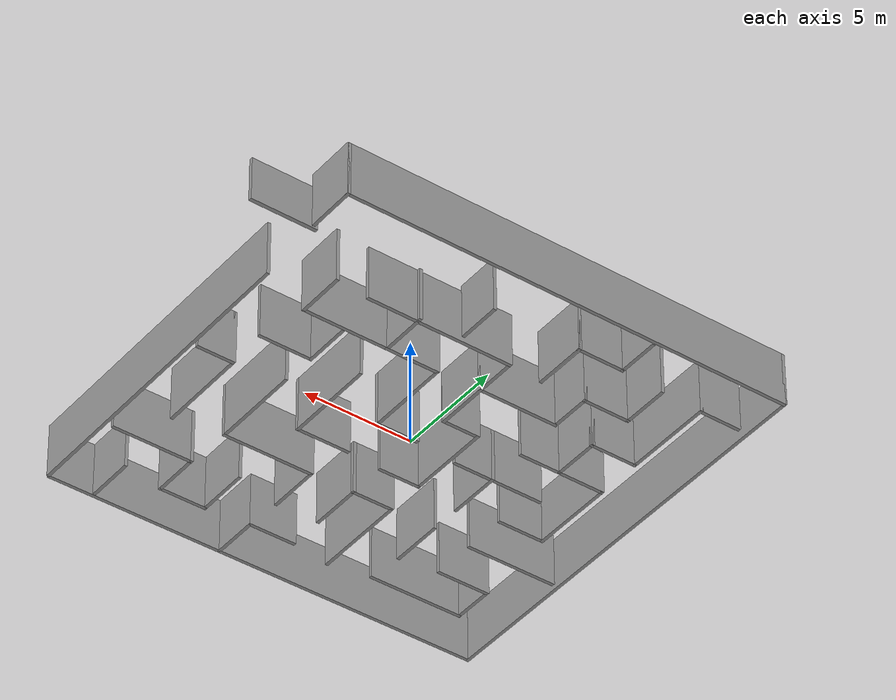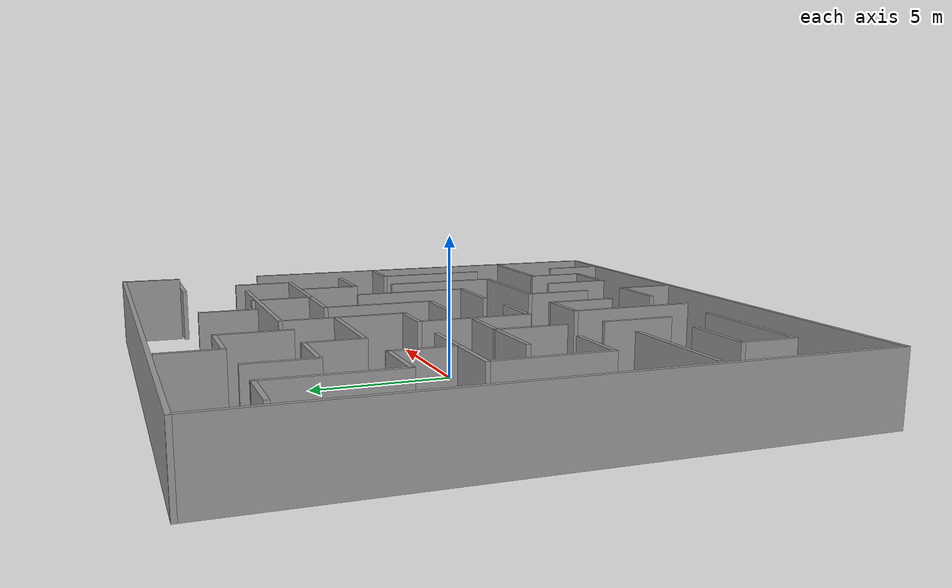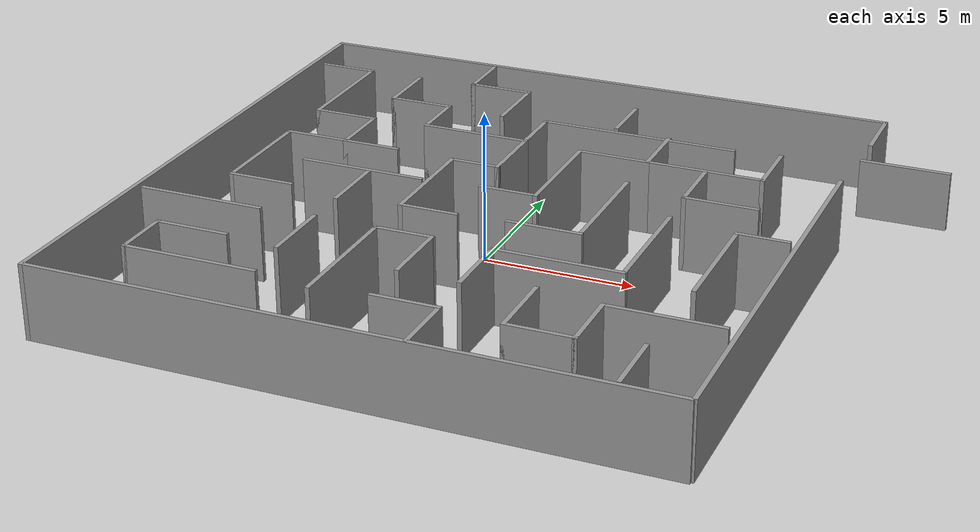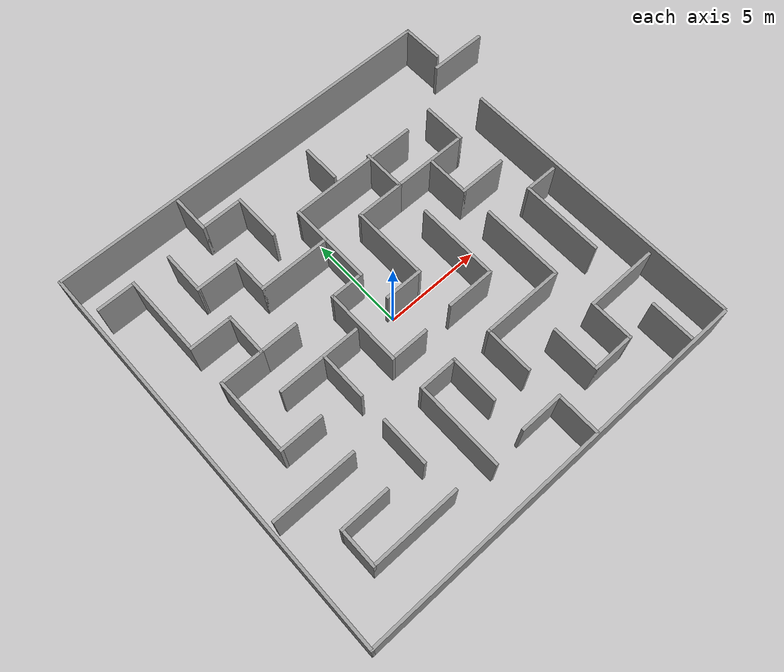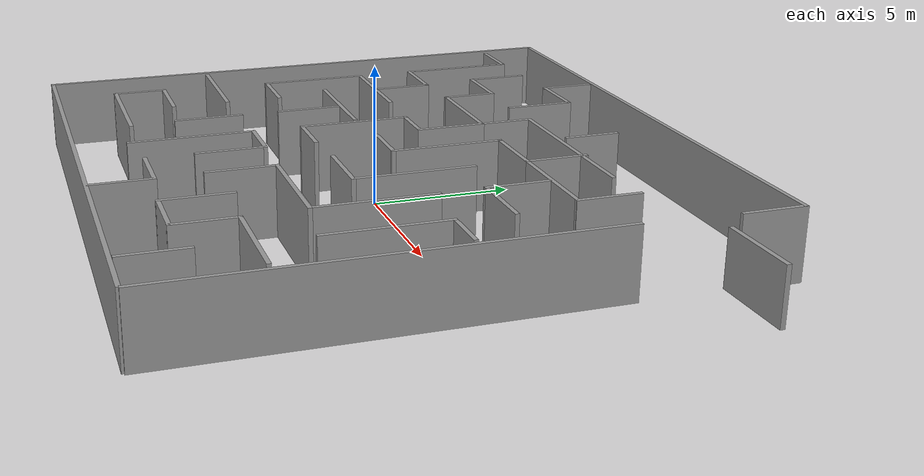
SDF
<?xml version='1.0'?>
<sdf version='1.7'>
  <model name='Untitled'>
    <pose>0.040123 0.094044 0 0 -0 0</pose>
    <link name='Door_1'>
      <collision name='Door_1_Collision'>
        <geometry>
          <box>
            <size>3 0.17 2</size>
          </box>
        </geometry>
        <pose>0 0 1 0 -0 0</pose>
      </collision>
      <visual name='Door_1_Visual'>
        <pose>0 0 1 0 -0 0</pose>
        <geometry>
          <box>
            <size>3 0.17 2</size>
          </box>
        </geometry>
        <material>
          <script>
            <uri>file://media/materials/scripts/gazebo.material</uri>
            <name>Gazebo/Grey</name>
          </script>
        </material>
      </visual>
      <pose>11.5424 7.83694 0 0 -0 0</pose>
    </link>
    <link name='Wall_10'>
      <collision name='Wall_10_Collision'>
        <geometry>
          <box>
            <size>20.5 0.15 2.5</size>
          </box>
        </geometry>
        <pose>0 0 1.25 0 -0 0</pose>
      </collision>
      <visual name='Wall_10_Visual'>
        <pose>0 0 1.25 0 -0 0</pose>
        <geometry>
          <box>
            <size>20.5 0.15 2.5</size>
          </box>
        </geometry>
        <material>
          <script>
            <uri>file://media/materials/scripts/gazebo.material</uri>
            <name>Gazebo/Grey</name>
          </script>
          <ambient>1 1 1 1</ambient>
        </material>
        <meta>
          <layer>0</layer>
        </meta>
      </visual>
      <pose>-0.125 -10.175 0 0 -0 0</pose>
    </link>
    <link name='Wall_12'>
      <collision name='Wall_12_Collision'>
        <geometry>
          <box>
            <size>2.25 0.15 2.5</size>
          </box>
        </geometry>
        <pose>0 0 1.25 0 -0 0</pose>
      </collision>
      <visual name='Wall_12_Visual'>
        <pose>0 0 1.25 0 -0 0</pose>
        <geometry>
          <box>
            <size>2.25 0.15 2.5</size>
          </box>
        </geometry>
        <material>
          <script>
            <uri>file://media/materials/scripts/gazebo.material</uri>
            <name>Gazebo/Grey</name>
          </script>
          <ambient>1 1 1 1</ambient>
        </material>
        <meta>
          <layer>0</layer>
        </meta>
      </visual>
      <pose>10.3 9.125 0 0 -0 -1.5708</pose>
    </link>
    <link name='Wall_14'>
      <collision name='Wall_14_Collision'>
        <geometry>
          <box>
            <size>15 0.15 2.5</size>
          </box>
        </geometry>
        <pose>0 0 1.25 0 -0 0</pose>
      </collision>
      <visual name='Wall_14_Visual'>
        <pose>0 0 1.25 0 -0 0</pose>
        <geometry>
          <box>
            <size>15 0.15 2.5</size>
          </box>
        </geometry>
        <material>
          <script>
            <uri>file://media/materials/scripts/gazebo.material</uri>
            <name>Gazebo/Grey</name>
          </script>
          <ambient>1 1 1 1</ambient>
        </material>
        <meta>
          <layer>0</layer>
        </meta>
      </visual>
      <pose>10.1273 -2.66445 0 0 -0 -1.5708</pose>
    </link>
    <link name='Wall_16'>
      <collision name='Wall_16_Collision'>
        <geometry>
          <box>
            <size>2 0.15 2.5</size>
          </box>
        </geometry>
        <pose>0 0 1.25 0 -0 0</pose>
      </collision>
      <visual name='Wall_16_Visual'>
        <pose>0 0 1.25 0 -0 0</pose>
        <geometry>
          <box>
            <size>2 0.15 2.5</size>
          </box>
        </geometry>
        <material>
          <script>
            <uri>file://media/materials/scripts/gazebo.material</uri>
            <name>Gazebo/Grey</name>
          </script>
          <ambient>1 1 1 1</ambient>
        </material>
        <meta>
          <layer>0</layer>
        </meta>
      </visual>
      <pose>-8.88278 7.96 0 0 -0 0</pose>
    </link>
    <link name='Wall_17'>
      <collision name='Wall_17_Collision'>
        <geometry>
          <box>
            <size>4.25 0.15 2.5</size>
          </box>
        </geometry>
        <pose>0 0 1.25 0 -0 0</pose>
      </collision>
      <visual name='Wall_17_Visual'>
        <pose>0 0 1.25 0 -0 0</pose>
        <geometry>
          <box>
            <size>4.25 0.15 2.5</size>
          </box>
        </geometry>
        <material>
          <script>
            <uri>file://media/materials/scripts/gazebo.material</uri>
            <name>Gazebo/Grey</name>
          </script>
          <ambient>1 1 1 1</ambient>
        </material>
        <meta>
          <layer>0</layer>
        </meta>
      </visual>
      <pose>-7.95778 5.91 0 0 -0 -1.5708</pose>
    </link>
    <link name='Wall_18'>
      <collision name='Wall_18_Collision'>
        <geometry>
          <box>
            <size>2.25 0.15 2.5</size>
          </box>
        </geometry>
        <pose>0 0 1.25 0 -0 0</pose>
      </collision>
      <visual name='Wall_18_Visual'>
        <pose>0 0 1.25 0 -0 0</pose>
        <geometry>
          <box>
            <size>2.25 0.15 2.5</size>
          </box>
        </geometry>
        <material>
          <script>
            <uri>file://media/materials/scripts/gazebo.material</uri>
            <name>Gazebo/Grey</name>
          </script>
          <ambient>1 1 1 1</ambient>
        </material>
        <meta>
          <layer>0</layer>
        </meta>
      </visual>
      <pose>-6.90778 3.86 0 0 -0 0</pose>
    </link>
    <link name='Wall_21'>
      <collision name='Wall_21_Collision'>
        <geometry>
          <box>
            <size>2.25 0.15 2.5</size>
          </box>
        </geometry>
        <pose>0 0 1.25 0 -0 0</pose>
      </collision>
      <visual name='Wall_21_Visual'>
        <pose>0 0 1.25 0 -0 0</pose>
        <geometry>
          <box>
            <size>2.25 0.15 2.5</size>
          </box>
        </geometry>
        <material>
          <script>
            <uri>file://media/materials/scripts/gazebo.material</uri>
            <name>Gazebo/Grey</name>
          </script>
          <ambient>1 1 1 1</ambient>
        </material>
        <meta>
          <layer>0</layer>
        </meta>
      </visual>
      <pose>-5.85778 2.81 0 0 -0 -1.5708</pose>
    </link>
    <link name='Wall_22'>
      <collision name='Wall_22_Collision'>
        <geometry>
          <box>
            <size>2 0.15 2.5</size>
          </box>
        </geometry>
        <pose>0 0 1.25 0 -0 0</pose>
      </collision>
      <visual name='Wall_22_Visual'>
        <pose>0 0 1.25 0 -0 0</pose>
        <geometry>
          <box>
            <size>2 0.15 2.5</size>
          </box>
        </geometry>
        <material>
          <script>
            <uri>file://media/materials/scripts/gazebo.material</uri>
            <name>Gazebo/Grey</name>
          </script>
          <ambient>1 1 1 1</ambient>
        </material>
        <meta>
          <layer>0</layer>
        </meta>
      </visual>
      <pose>-4.93278 1.76 0 0 -0 0</pose>
    </link>
    <link name='Wall_24'>
      <collision name='Wall_24_Collision'>
        <geometry>
          <box>
            <size>2.25 0.15 2.5</size>
          </box>
        </geometry>
        <pose>0 0 1.25 0 -0 0</pose>
      </collision>
      <visual name='Wall_24_Visual'>
        <pose>0 0 1.25 0 -0 0</pose>
        <geometry>
          <box>
            <size>2.25 0.15 2.5</size>
          </box>
        </geometry>
        <material>
          <script>
            <uri>file://media/materials/scripts/gazebo.material</uri>
            <name>Gazebo/Grey</name>
          </script>
          <ambient>1 1 1 1</ambient>
        </material>
        <meta>
          <layer>0</layer>
        </meta>
      </visual>
      <pose>-6.90778 1.76 0 0 -0 3.14159</pose>
    </link>
    <link name='Wall_25'>
      <collision name='Wall_25_Collision'>
        <geometry>
          <box>
            <size>4 0.15 2.5</size>
          </box>
        </geometry>
        <pose>0 0 1.25 0 -0 0</pose>
      </collision>
      <visual name='Wall_25_Visual'>
        <pose>0 0 1.25 0 -0 0</pose>
        <geometry>
          <box>
            <size>4 0.15 2.5</size>
          </box>
        </geometry>
        <material>
          <script>
            <uri>file://media/materials/scripts/gazebo.material</uri>
            <name>Gazebo/Grey</name>
          </script>
          <ambient>1 1 1 1</ambient>
        </material>
        <meta>
          <layer>0</layer>
        </meta>
      </visual>
      <pose>-7.95778 -0.165003 0 0 -0 -1.5708</pose>
    </link>
    <link name='Wall_26'>
      <collision name='Wall_26_Collision'>
        <geometry>
          <box>
            <size>2.25 0.15 2.5</size>
          </box>
        </geometry>
        <pose>0 0 1.25 0 -0 0</pose>
      </collision>
      <visual name='Wall_26_Visual'>
        <pose>0 0 1.25 0 -0 0</pose>
        <geometry>
          <box>
            <size>2.25 0.15 2.5</size>
          </box>
        </geometry>
        <material>
          <script>
            <uri>file://media/materials/scripts/gazebo.material</uri>
            <name>Gazebo/Grey</name>
          </script>
          <ambient>1 1 1 1</ambient>
        </material>
        <meta>
          <layer>0</layer>
        </meta>
      </visual>
      <pose>-6.90778 -2.09 0 0 -0 0</pose>
    </link>
    <link name='Wall_28'>
      <collision name='Wall_28_Collision'>
        <geometry>
          <box>
            <size>2.25 0.15 2.5</size>
          </box>
        </geometry>
        <pose>0 0 1.25 0 -0 0</pose>
      </collision>
      <visual name='Wall_28_Visual'>
        <pose>0 0 1.25 0 -0 0</pose>
        <geometry>
          <box>
            <size>2.25 0.15 2.5</size>
          </box>
        </geometry>
        <material>
          <script>
            <uri>file://media/materials/scripts/gazebo.material</uri>
            <name>Gazebo/Grey</name>
          </script>
          <ambient>1 1 1 1</ambient>
        </material>
        <meta>
          <layer>0</layer>
        </meta>
      </visual>
      <pose>-6.05458 6.91 0 0 -0 -1.5708</pose>
    </link>
    <link name='Wall_29'>
      <collision name='Wall_29_Collision'>
        <geometry>
          <box>
            <size>2.25 0.15 2.5</size>
          </box>
        </geometry>
        <pose>0 0 1.25 0 -0 0</pose>
      </collision>
      <visual name='Wall_29_Visual'>
        <pose>0 0 1.25 0 -0 0</pose>
        <geometry>
          <box>
            <size>2.25 0.15 2.5</size>
          </box>
        </geometry>
        <material>
          <script>
            <uri>file://media/materials/scripts/gazebo.material</uri>
            <name>Gazebo/Grey</name>
          </script>
          <ambient>1 1 1 1</ambient>
        </material>
        <meta>
          <layer>0</layer>
        </meta>
      </visual>
      <pose>-5.00458 5.86 0 0 -0 0</pose>
    </link>
    <link name='Wall_30'>
      <collision name='Wall_30_Collision'>
        <geometry>
          <box>
            <size>2 0.15 2.5</size>
          </box>
        </geometry>
        <pose>0 0 1.25 0 -0 0</pose>
      </collision>
      <visual name='Wall_30_Visual'>
        <pose>0 0 1.25 0 -0 0</pose>
        <geometry>
          <box>
            <size>2 0.15 2.5</size>
          </box>
        </geometry>
        <material>
          <script>
            <uri>file://media/materials/scripts/gazebo.material</uri>
            <name>Gazebo/Grey</name>
          </script>
          <ambient>1 1 1 1</ambient>
        </material>
        <meta>
          <layer>0</layer>
        </meta>
      </visual>
      <pose>-3.95458 4.935 0 0 -0 -1.5708</pose>
    </link>
    <link name='Wall_31'>
      <collision name='Wall_31_Collision'>
        <geometry>
          <box>
            <size>3.75 0.15 2.5</size>
          </box>
        </geometry>
        <pose>0 0 1.25 0 -0 0</pose>
      </collision>
      <visual name='Wall_31_Visual'>
        <pose>0 0 1.25 0 -0 0</pose>
        <geometry>
          <box>
            <size>3.75 0.15 2.5</size>
          </box>
        </geometry>
        <material>
          <script>
            <uri>file://media/materials/scripts/gazebo.material</uri>
            <name>Gazebo/Grey</name>
          </script>
          <ambient>1 1 1 1</ambient>
        </material>
        <meta>
          <layer>0</layer>
        </meta>
      </visual>
      <pose>-2.15458 4.01 0 0 -0 0</pose>
    </link>
    <link name='Wall_32'>
      <collision name='Wall_32_Collision'>
        <geometry>
          <box>
            <size>2 0.15 2.5</size>
          </box>
        </geometry>
        <pose>0 0 1.25 0 -0 0</pose>
      </collision>
      <visual name='Wall_32_Visual'>
        <pose>0 0 1.25 0 -0 0</pose>
        <geometry>
          <box>
            <size>2 0.15 2.5</size>
          </box>
        </geometry>
        <material>
          <script>
            <uri>file://media/materials/scripts/gazebo.material</uri>
            <name>Gazebo/Grey</name>
          </script>
          <ambient>1 1 1 1</ambient>
        </material>
        <meta>
          <layer>0</layer>
        </meta>
      </visual>
      <pose>-0.354576 4.935 0 0 -0 1.5708</pose>
    </link>
    <link name='Wall_33'>
      <collision name='Wall_33_Collision'>
        <geometry>
          <box>
            <size>6.75 0.15 2.5</size>
          </box>
        </geometry>
        <pose>0 0 1.25 0 -0 0</pose>
      </collision>
      <visual name='Wall_33_Visual'>
        <pose>0 0 1.25 0 -0 0</pose>
        <geometry>
          <box>
            <size>6.75 0.15 2.5</size>
          </box>
        </geometry>
        <material>
          <script>
            <uri>file://media/materials/scripts/gazebo.material</uri>
            <name>Gazebo/Grey</name>
          </script>
          <ambient>1 1 1 1</ambient>
        </material>
        <meta>
          <layer>0</layer>
        </meta>
      </visual>
      <pose>2.94542 5.86 0 0 -0 0</pose>
    </link>
    <link name='Wall_35'>
      <collision name='Wall_35_Collision'>
        <geometry>
          <box>
            <size>2 0.15 2.5</size>
          </box>
        </geometry>
        <pose>0 0 1.25 0 -0 0</pose>
      </collision>
      <visual name='Wall_35_Visual'>
        <pose>0 0 1.25 0 -0 0</pose>
        <geometry>
          <box>
            <size>2 0.15 2.5</size>
          </box>
        </geometry>
        <material>
          <script>
            <uri>file://media/materials/scripts/gazebo.material</uri>
            <name>Gazebo/Grey</name>
          </script>
          <ambient>1 1 1 1</ambient>
        </material>
        <meta>
          <layer>0</layer>
        </meta>
      </visual>
      <pose>2.0671 7.16222 0 0 -0 1.5708</pose>
    </link>
    <link name='Wall_37'>
      <collision name='Wall_37_Collision'>
        <geometry>
          <box>
            <size>2 0.15 2.5</size>
          </box>
        </geometry>
        <pose>0 0 1.25 0 -0 0</pose>
      </collision>
      <visual name='Wall_37_Visual'>
        <pose>0 0 1.25 0 -0 0</pose>
        <geometry>
          <box>
            <size>2 0.15 2.5</size>
          </box>
        </geometry>
        <material>
          <script>
            <uri>file://media/materials/scripts/gazebo.material</uri>
            <name>Gazebo/Grey</name>
          </script>
          <ambient>1 1 1 1</ambient>
        </material>
        <meta>
          <layer>0</layer>
        </meta>
      </visual>
      <pose>-4.02416 9.06542 0 0 -0 -1.5708</pose>
    </link>
    <link name='Wall_38'>
      <collision name='Wall_38_Collision'>
        <geometry>
          <box>
            <size>2.25 0.15 2.5</size>
          </box>
        </geometry>
        <pose>0 0 1.25 0 -0 0</pose>
      </collision>
      <visual name='Wall_38_Visual'>
        <pose>0 0 1.25 0 -0 0</pose>
        <geometry>
          <box>
            <size>2.25 0.15 2.5</size>
          </box>
        </geometry>
        <material>
          <script>
            <uri>file://media/materials/scripts/gazebo.material</uri>
            <name>Gazebo/Grey</name>
          </script>
          <ambient>1 1 1 1</ambient>
        </material>
        <meta>
          <layer>0</layer>
        </meta>
      </visual>
      <pose>-2.97416 8.14042 0 0 -0 0</pose>
    </link>
    <link name='Wall_41'>
      <collision name='Wall_41_Collision'>
        <geometry>
          <box>
            <size>2.5 0.15 2.5</size>
          </box>
        </geometry>
        <pose>0 0 1.25 0 -0 0</pose>
      </collision>
      <visual name='Wall_41_Visual'>
        <pose>0 0 1.25 0 -0 0</pose>
        <geometry>
          <box>
            <size>2.5 0.15 2.5</size>
          </box>
        </geometry>
        <material>
          <script>
            <uri>file://media/materials/scripts/gazebo.material</uri>
            <name>Gazebo/Grey</name>
          </script>
          <ambient>1 1 1 1</ambient>
        </material>
        <meta>
          <layer>0</layer>
        </meta>
      </visual>
      <pose>-1.92416 6.96542 0 0 -0 -1.5708</pose>
    </link>
    <link name='Wall_43'>
      <collision name='Wall_43_Collision'>
        <geometry>
          <box>
            <size>2.25 0.15 2.5</size>
          </box>
        </geometry>
        <pose>0 0 1.25 0 -0 0</pose>
      </collision>
      <visual name='Wall_43_Visual'>
        <pose>0 0 1.25 0 -0 0</pose>
        <geometry>
          <box>
            <size>2.25 0.15 2.5</size>
          </box>
        </geometry>
        <material>
          <script>
            <uri>file://media/materials/scripts/gazebo.material</uri>
            <name>Gazebo/Grey</name>
          </script>
          <ambient>1 1 1 1</ambient>
        </material>
        <meta>
          <layer>0</layer>
        </meta>
      </visual>
      <pose>3.97447 4.9411 0 0 -0 -1.5708</pose>
    </link>
    <link name='Wall_44'>
      <collision name='Wall_44_Collision'>
        <geometry>
          <box>
            <size>2.5 0.15 2.5</size>
          </box>
        </geometry>
        <pose>0 0 1.25 0 -0 0</pose>
      </collision>
      <visual name='Wall_44_Visual'>
        <pose>0 0 1.25 0 -0 0</pose>
        <geometry>
          <box>
            <size>2.5 0.15 2.5</size>
          </box>
        </geometry>
        <material>
          <script>
            <uri>file://media/materials/scripts/gazebo.material</uri>
            <name>Gazebo/Grey</name>
          </script>
          <ambient>1 1 1 1</ambient>
        </material>
        <meta>
          <layer>0</layer>
        </meta>
      </visual>
      <pose>2.79947 3.8911 0 0 -0 3.14159</pose>
    </link>
    <link name='Wall_45'>
      <collision name='Wall_45_Collision'>
        <geometry>
          <box>
            <size>4 0.15 2.5</size>
          </box>
        </geometry>
        <pose>0 0 1.25 0 -0 0</pose>
      </collision>
      <visual name='Wall_45_Visual'>
        <pose>0 0 1.25 0 -0 0</pose>
        <geometry>
          <box>
            <size>4 0.15 2.5</size>
          </box>
        </geometry>
        <material>
          <script>
            <uri>file://media/materials/scripts/gazebo.material</uri>
            <name>Gazebo/Grey</name>
          </script>
          <ambient>1 1 1 1</ambient>
        </material>
        <meta>
          <layer>0</layer>
        </meta>
      </visual>
      <pose>1.62447 1.9661 0 0 -0 -1.5708</pose>
    </link>
    <link name='Wall_46'>
      <collision name='Wall_46_Collision'>
        <geometry>
          <box>
            <size>2 0.15 2.5</size>
          </box>
        </geometry>
        <pose>0 0 1.25 0 -0 0</pose>
      </collision>
      <visual name='Wall_46_Visual'>
        <pose>0 0 1.25 0 -0 0</pose>
        <geometry>
          <box>
            <size>2 0.15 2.5</size>
          </box>
        </geometry>
        <material>
          <script>
            <uri>file://media/materials/scripts/gazebo.material</uri>
            <name>Gazebo/Grey</name>
          </script>
          <ambient>1 1 1 1</ambient>
        </material>
        <meta>
          <layer>0</layer>
        </meta>
      </visual>
      <pose>0.699468 0.041105 0 0 -0 3.14159</pose>
    </link>
    <link name='Wall_48'>
      <collision name='Wall_48_Collision'>
        <geometry>
          <box>
            <size>4 0.15 2.5</size>
          </box>
        </geometry>
        <pose>0 0 1.25 0 -0 0</pose>
      </collision>
      <visual name='Wall_48_Visual'>
        <pose>0 0 1.25 0 -0 0</pose>
        <geometry>
          <box>
            <size>4 0.15 2.5</size>
          </box>
        </geometry>
        <material>
          <script>
            <uri>file://media/materials/scripts/gazebo.material</uri>
            <name>Gazebo/Grey</name>
          </script>
          <ambient>1 1 1 1</ambient>
        </material>
        <meta>
          <layer>0</layer>
        </meta>
      </visual>
      <pose>5.89947 3.8911 0 0 -0 0</pose>
    </link>
    <link name='Wall_49'>
      <collision name='Wall_49_Collision'>
        <geometry>
          <box>
            <size>2.25 0.15 2.5</size>
          </box>
        </geometry>
        <pose>0 0 1.25 0 -0 0</pose>
      </collision>
      <visual name='Wall_49_Visual'>
        <pose>0 0 1.25 0 -0 0</pose>
        <geometry>
          <box>
            <size>2.25 0.15 2.5</size>
          </box>
        </geometry>
        <material>
          <script>
            <uri>file://media/materials/scripts/gazebo.material</uri>
            <name>Gazebo/Grey</name>
          </script>
          <ambient>1 1 1 1</ambient>
        </material>
        <meta>
          <layer>0</layer>
        </meta>
      </visual>
      <pose>7.82447 4.9411 0 0 -0 1.5708</pose>
    </link>
    <link name='Wall_52'>
      <collision name='Wall_52_Collision'>
        <geometry>
          <box>
            <size>2.25 0.15 2.5</size>
          </box>
        </geometry>
        <pose>0 0 1.25 0 -0 0</pose>
      </collision>
      <visual name='Wall_52_Visual'>
        <pose>0 0 1.25 0 -0 0</pose>
        <geometry>
          <box>
            <size>2.25 0.15 2.5</size>
          </box>
        </geometry>
        <material>
          <script>
            <uri>file://media/materials/scripts/gazebo.material</uri>
            <name>Gazebo/Grey</name>
          </script>
          <ambient>1 1 1 1</ambient>
        </material>
        <meta>
          <layer>0</layer>
        </meta>
      </visual>
      <pose>5.94336 2.7261 0 0 -0 -1.5708</pose>
    </link>
    <link name='Wall_53'>
      <collision name='Wall_53_Collision'>
        <geometry>
          <box>
            <size>2.5 0.15 2.5</size>
          </box>
        </geometry>
        <pose>0 0 1.25 0 -0 0</pose>
      </collision>
      <visual name='Wall_53_Visual'>
        <pose>0 0 1.25 0 -0 0</pose>
        <geometry>
          <box>
            <size>2.5 0.15 2.5</size>
          </box>
        </geometry>
        <material>
          <script>
            <uri>file://media/materials/scripts/gazebo.material</uri>
            <name>Gazebo/Grey</name>
          </script>
          <ambient>1 1 1 1</ambient>
        </material>
        <meta>
          <layer>0</layer>
        </meta>
      </visual>
      <pose>7.11836 1.6761 0 0 -0 0</pose>
    </link>
    <link name='Wall_56'>
      <collision name='Wall_56_Collision'>
        <geometry>
          <box>
            <size>2.5 0.15 2.5</size>
          </box>
        </geometry>
        <pose>0 0 1.25 0 -0 0</pose>
      </collision>
      <visual name='Wall_56_Visual'>
        <pose>0 0 1.25 0 -0 0</pose>
        <geometry>
          <box>
            <size>2.5 0.15 2.5</size>
          </box>
        </geometry>
        <material>
          <script>
            <uri>file://media/materials/scripts/gazebo.material</uri>
            <name>Gazebo/Grey</name>
          </script>
          <ambient>1 1 1 1</ambient>
        </material>
        <meta>
          <layer>0</layer>
        </meta>
      </visual>
      <pose>-0.354576 2.835 0 0 -0 -1.5708</pose>
    </link>
    <link name='Wall_57'>
      <collision name='Wall_57_Collision'>
        <geometry>
          <box>
            <size>1.75 0.15 2.5</size>
          </box>
        </geometry>
        <pose>0 0 1.25 0 -0 0</pose>
      </collision>
      <visual name='Wall_57_Visual'>
        <pose>0 0 1.25 0 -0 0</pose>
        <geometry>
          <box>
            <size>1.75 0.15 2.5</size>
          </box>
        </geometry>
        <material>
          <script>
            <uri>file://media/materials/scripts/gazebo.material</uri>
            <name>Gazebo/Grey</name>
          </script>
          <ambient>1 1 1 1</ambient>
        </material>
        <meta>
          <layer>0</layer>
        </meta>
      </visual>
      <pose>-1.15458 1.66 0 0 -0 3.14159</pose>
    </link>
    <link name='Wall_58'>
      <collision name='Wall_58_Collision'>
        <geometry>
          <box>
            <size>4 0.15 2.5</size>
          </box>
        </geometry>
        <pose>0 0 1.25 0 -0 0</pose>
      </collision>
      <visual name='Wall_58_Visual'>
        <pose>0 0 1.25 0 -0 0</pose>
        <geometry>
          <box>
            <size>4 0.15 2.5</size>
          </box>
        </geometry>
        <material>
          <script>
            <uri>file://media/materials/scripts/gazebo.material</uri>
            <name>Gazebo/Grey</name>
          </script>
          <ambient>1 1 1 1</ambient>
        </material>
        <meta>
          <layer>0</layer>
        </meta>
      </visual>
      <pose>-1.95458 -0.265003 0 0 -0 -1.5708</pose>
    </link>
    <link name='Wall_59'>
      <collision name='Wall_59_Collision'>
        <geometry>
          <box>
            <size>2 0.15 2.5</size>
          </box>
        </geometry>
        <pose>0 0 1.25 0 -0 0</pose>
      </collision>
      <visual name='Wall_59_Visual'>
        <pose>0 0 1.25 0 -0 0</pose>
        <geometry>
          <box>
            <size>2 0.15 2.5</size>
          </box>
        </geometry>
        <material>
          <script>
            <uri>file://media/materials/scripts/gazebo.material</uri>
            <name>Gazebo/Grey</name>
          </script>
          <ambient>1 1 1 1</ambient>
        </material>
        <meta>
          <layer>0</layer>
        </meta>
      </visual>
      <pose>-1.02958 -2.19 0 0 -0 0</pose>
    </link>
    <link name='Wall_61'>
      <collision name='Wall_61_Collision'>
        <geometry>
          <box>
            <size>4.25 0.15 2.5</size>
          </box>
        </geometry>
        <pose>0 0 1.25 0 -0 0</pose>
      </collision>
      <visual name='Wall_61_Visual'>
        <pose>0 0 1.25 0 -0 0</pose>
        <geometry>
          <box>
            <size>4.25 0.15 2.5</size>
          </box>
        </geometry>
        <material>
          <script>
            <uri>file://media/materials/scripts/gazebo.material</uri>
            <name>Gazebo/Grey</name>
          </script>
          <ambient>1 1 1 1</ambient>
        </material>
        <meta>
          <layer>0</layer>
        </meta>
      </visual>
      <pose>-4.28985 -0.161683 0 0 -0 3.14159</pose>
    </link>
    <link name='Wall_63'>
      <collision name='Wall_63_Collision'>
        <geometry>
          <box>
            <size>2.5 0.15 2.5</size>
          </box>
        </geometry>
        <pose>0 0 1.25 0 -0 0</pose>
      </collision>
      <visual name='Wall_63_Visual'>
        <pose>0 0 1.25 0 -0 0</pose>
        <geometry>
          <box>
            <size>2.5 0.15 2.5</size>
          </box>
        </geometry>
        <material>
          <script>
            <uri>file://media/materials/scripts/gazebo.material</uri>
            <name>Gazebo/Grey</name>
          </script>
          <ambient>1 1 1 1</ambient>
        </material>
        <meta>
          <layer>0</layer>
        </meta>
      </visual>
      <pose>-4.02416 -1.33668 0 0 -0 -1.5708</pose>
    </link>
    <link name='Wall_65'>
      <collision name='Wall_65_Collision'>
        <geometry>
          <box>
            <size>4.25 0.15 2.5</size>
          </box>
        </geometry>
        <pose>0 0 1.25 0 -0 0</pose>
      </collision>
      <visual name='Wall_65_Visual'>
        <pose>0 0 1.25 0 -0 0</pose>
        <geometry>
          <box>
            <size>4.25 0.15 2.5</size>
          </box>
        </geometry>
        <material>
          <script>
            <uri>file://media/materials/scripts/gazebo.material</uri>
            <name>Gazebo/Grey</name>
          </script>
          <ambient>1 1 1 1</ambient>
        </material>
        <meta>
          <layer>0</layer>
        </meta>
      </visual>
      <pose>3.91294 0.00332 0 0 -0 -1.5708</pose>
    </link>
    <link name='Wall_66'>
      <collision name='Wall_66_Collision'>
        <geometry>
          <box>
            <size>2.5 0.15 2.5</size>
          </box>
        </geometry>
        <pose>0 0 1.25 0 -0 0</pose>
      </collision>
      <visual name='Wall_66_Visual'>
        <pose>0 0 1.25 0 -0 0</pose>
        <geometry>
          <box>
            <size>2.5 0.15 2.5</size>
          </box>
        </geometry>
        <material>
          <script>
            <uri>file://media/materials/scripts/gazebo.material</uri>
            <name>Gazebo/Grey</name>
          </script>
          <ambient>1 1 1 1</ambient>
        </material>
        <meta>
          <layer>0</layer>
        </meta>
      </visual>
      <pose>2.73794 -2.04668 0 0 -0 3.14159</pose>
    </link>
    <link name='Wall_68'>
      <collision name='Wall_68_Collision'>
        <geometry>
          <box>
            <size>4.25 0.15 2.5</size>
          </box>
        </geometry>
        <pose>0 0 1.25 0 -0 0</pose>
      </collision>
      <visual name='Wall_68_Visual'>
        <pose>0 0 1.25 0 -0 0</pose>
        <geometry>
          <box>
            <size>4.25 0.15 2.5</size>
          </box>
        </geometry>
        <material>
          <script>
            <uri>file://media/materials/scripts/gazebo.material</uri>
            <name>Gazebo/Grey</name>
          </script>
          <ambient>1 1 1 1</ambient>
        </material>
        <meta>
          <layer>0</layer>
        </meta>
      </visual>
      <pose>6.00489 -1.96557 0 0 -0 -1.5708</pose>
    </link>
    <link name='Wall_69'>
      <collision name='Wall_69_Collision'>
        <geometry>
          <box>
            <size>4.25 0.15 2.5</size>
          </box>
        </geometry>
        <pose>0 0 1.25 0 -0 0</pose>
      </collision>
      <visual name='Wall_69_Visual'>
        <pose>0 0 1.25 0 -0 0</pose>
        <geometry>
          <box>
            <size>4.25 0.15 2.5</size>
          </box>
        </geometry>
        <material>
          <script>
            <uri>file://media/materials/scripts/gazebo.material</uri>
            <name>Gazebo/Grey</name>
          </script>
          <ambient>1 1 1 1</ambient>
        </material>
        <meta>
          <layer>0</layer>
        </meta>
      </visual>
      <pose>3.95489 -4.01557 0 0 -0 3.14159</pose>
    </link>
    <link name='Wall_7'>
      <collision name='Wall_7_Collision'>
        <geometry>
          <box>
            <size>20.75 0.15 2.5</size>
          </box>
        </geometry>
        <pose>0 0 1.25 0 -0 0</pose>
      </collision>
      <visual name='Wall_7_Visual'>
        <pose>0 0 1.25 0 -0 0</pose>
        <geometry>
          <box>
            <size>20.75 0.15 2.5</size>
          </box>
        </geometry>
        <material>
          <script>
            <uri>file://media/materials/scripts/gazebo.material</uri>
            <name>Gazebo/Grey</name>
          </script>
          <ambient>1 1 1 1</ambient>
        </material>
        <meta>
          <layer>0</layer>
        </meta>
      </visual>
      <pose>0 10.175 0 0 -0 0</pose>
    </link>
    <link name='Wall_70'>
      <collision name='Wall_70_Collision'>
        <geometry>
          <box>
            <size>2.5 0.15 2.5</size>
          </box>
        </geometry>
        <pose>0 0 1.25 0 -0 0</pose>
      </collision>
      <visual name='Wall_70_Visual'>
        <pose>0 0 1.25 0 -0 0</pose>
        <geometry>
          <box>
            <size>2.5 0.15 2.5</size>
          </box>
        </geometry>
        <material>
          <script>
            <uri>file://media/materials/scripts/gazebo.material</uri>
            <name>Gazebo/Grey</name>
          </script>
          <ambient>1 1 1 1</ambient>
        </material>
        <meta>
          <layer>0</layer>
        </meta>
      </visual>
      <pose>1.90489 -5.19057 0 0 -0 -1.5708</pose>
    </link>
    <link name='Wall_72'>
      <collision name='Wall_72_Collision'>
        <geometry>
          <box>
            <size>2.5 0.15 2.5</size>
          </box>
        </geometry>
        <pose>0 0 1.25 0 -0 0</pose>
      </collision>
      <visual name='Wall_72_Visual'>
        <pose>0 0 1.25 0 -0 0</pose>
        <geometry>
          <box>
            <size>2.5 0.15 2.5</size>
          </box>
        </geometry>
        <material>
          <script>
            <uri>file://media/materials/scripts/gazebo.material</uri>
            <name>Gazebo/Grey</name>
          </script>
          <ambient>1 1 1 1</ambient>
        </material>
        <meta>
          <layer>0</layer>
        </meta>
      </visual>
      <pose>-4.02416 -5.15141 0 0 -0 -1.5708</pose>
    </link>
    <link name='Wall_74'>
      <collision name='Wall_74_Collision'>
        <geometry>
          <box>
            <size>4.25 0.15 2.5</size>
          </box>
        </geometry>
        <pose>0 0 1.25 0 -0 0</pose>
      </collision>
      <visual name='Wall_74_Visual'>
        <pose>0 0 1.25 0 -0 0</pose>
        <geometry>
          <box>
            <size>4.25 0.15 2.5</size>
          </box>
        </geometry>
        <material>
          <script>
            <uri>file://media/materials/scripts/gazebo.material</uri>
            <name>Gazebo/Grey</name>
          </script>
          <ambient>1 1 1 1</ambient>
        </material>
        <meta>
          <layer>0</layer>
        </meta>
      </visual>
      <pose>-7.91999 -4.09947 0 0 -0 3.14159</pose>
    </link>
    <link name='Wall_76'>
      <collision name='Wall_76_Collision'>
        <geometry>
          <box>
            <size>2.5 0.15 2.5</size>
          </box>
        </geometry>
        <pose>0 0 1.25 0 -0 0</pose>
      </collision>
      <visual name='Wall_76_Visual'>
        <pose>0 0 1.25 0 -0 0</pose>
        <geometry>
          <box>
            <size>2.5 0.15 2.5</size>
          </box>
        </geometry>
        <material>
          <script>
            <uri>file://media/materials/scripts/gazebo.material</uri>
            <name>Gazebo/Grey</name>
          </script>
          <ambient>1 1 1 1</ambient>
        </material>
        <meta>
          <layer>0</layer>
        </meta>
      </visual>
      <pose>-7.04499 -6.12989 0 0 -0 3.14159</pose>
    </link>
    <link name='Wall_77'>
      <collision name='Wall_77_Collision'>
        <geometry>
          <box>
            <size>2 0.15 2.5</size>
          </box>
        </geometry>
        <pose>0 0 1.25 0 -0 0</pose>
      </collision>
      <visual name='Wall_77_Visual'>
        <pose>0 0 1.25 0 -0 0</pose>
        <geometry>
          <box>
            <size>2 0.15 2.5</size>
          </box>
        </geometry>
        <material>
          <script>
            <uri>file://media/materials/scripts/gazebo.material</uri>
            <name>Gazebo/Grey</name>
          </script>
          <ambient>1 1 1 1</ambient>
        </material>
        <meta>
          <layer>0</layer>
        </meta>
      </visual>
      <pose>-8.21999 -7.05489 0 0 -0 -1.5708</pose>
    </link>
    <link name='Wall_78'>
      <collision name='Wall_78_Collision'>
        <geometry>
          <box>
            <size>4.5 0.15 2.5</size>
          </box>
        </geometry>
        <pose>0 0 1.25 0 -0 0</pose>
      </collision>
      <visual name='Wall_78_Visual'>
        <pose>0 0 1.25 0 -0 0</pose>
        <geometry>
          <box>
            <size>4.5 0.15 2.5</size>
          </box>
        </geometry>
        <material>
          <script>
            <uri>file://media/materials/scripts/gazebo.material</uri>
            <name>Gazebo/Grey</name>
          </script>
          <ambient>1 1 1 1</ambient>
        </material>
        <meta>
          <layer>0</layer>
        </meta>
      </visual>
      <pose>-6.04499 -7.97989 0 0 -0 0</pose>
    </link>
    <link name='Wall_80'>
      <collision name='Wall_80_Collision'>
        <geometry>
          <box>
            <size>2.5 0.15 2.5</size>
          </box>
        </geometry>
        <pose>0 0 1.25 0 -0 0</pose>
      </collision>
      <visual name='Wall_80_Visual'>
        <pose>0 0 1.25 0 -0 0</pose>
        <geometry>
          <box>
            <size>2.5 0.15 2.5</size>
          </box>
        </geometry>
        <material>
          <script>
            <uri>file://media/materials/scripts/gazebo.material</uri>
            <name>Gazebo/Grey</name>
          </script>
          <ambient>1 1 1 1</ambient>
        </material>
        <meta>
          <layer>0</layer>
        </meta>
      </visual>
      <pose>-0.086372 -5.13947 0 0 -0 1.5708</pose>
    </link>
    <link name='Wall_81'>
      <collision name='Wall_81_Collision'>
        <geometry>
          <box>
            <size>2 0.15 2.5</size>
          </box>
        </geometry>
        <pose>0 0 1.25 0 -0 0</pose>
      </collision>
      <visual name='Wall_81_Visual'>
        <pose>0 0 1.25 0 -0 0</pose>
        <geometry>
          <box>
            <size>2 0.15 2.5</size>
          </box>
        </geometry>
        <material>
          <script>
            <uri>file://media/materials/scripts/gazebo.material</uri>
            <name>Gazebo/Grey</name>
          </script>
          <ambient>1 1 1 1</ambient>
        </material>
        <meta>
          <layer>0</layer>
        </meta>
      </visual>
      <pose>-1.01137 -3.96447 0 0 -0 3.14159</pose>
    </link>
    <link name='Wall_82'>
      <collision name='Wall_82_Collision'>
        <geometry>
          <box>
            <size>4.5 0.15 2.5</size>
          </box>
        </geometry>
        <pose>0 0 1.25 0 -0 0</pose>
      </collision>
      <visual name='Wall_82_Visual'>
        <pose>0 0 1.25 0 -0 0</pose>
        <geometry>
          <box>
            <size>4.5 0.15 2.5</size>
          </box>
        </geometry>
        <material>
          <script>
            <uri>file://media/materials/scripts/gazebo.material</uri>
            <name>Gazebo/Grey</name>
          </script>
          <ambient>1 1 1 1</ambient>
        </material>
        <meta>
          <layer>0</layer>
        </meta>
      </visual>
      <pose>-1.93637 -6.13947 0 0 -0 -1.5708</pose>
    </link>
    <link name='Wall_84'>
      <collision name='Wall_84_Collision'>
        <geometry>
          <box>
            <size>2.25 0.15 2.5</size>
          </box>
        </geometry>
        <pose>0 0 1.25 0 -0 0</pose>
      </collision>
      <visual name='Wall_84_Visual'>
        <pose>0 0 1.25 0 -0 0</pose>
        <geometry>
          <box>
            <size>2.25 0.15 2.5</size>
          </box>
        </geometry>
        <material>
          <script>
            <uri>file://media/materials/scripts/gazebo.material</uri>
            <name>Gazebo/Grey</name>
          </script>
          <ambient>1 1 1 1</ambient>
        </material>
        <meta>
          <layer>0</layer>
        </meta>
      </visual>
      <pose>0.963628 -8.03725 0 0 -0 0</pose>
    </link>
    <link name='Wall_85'>
      <collision name='Wall_85_Collision'>
        <geometry>
          <box>
            <size>2.25 0.15 2.5</size>
          </box>
        </geometry>
        <pose>0 0 1.25 0 -0 0</pose>
      </collision>
      <visual name='Wall_85_Visual'>
        <pose>0 0 1.25 0 -0 0</pose>
        <geometry>
          <box>
            <size>2.25 0.15 2.5</size>
          </box>
        </geometry>
        <material>
          <script>
            <uri>file://media/materials/scripts/gazebo.material</uri>
            <name>Gazebo/Grey</name>
          </script>
          <ambient>1 1 1 1</ambient>
        </material>
        <meta>
          <layer>0</layer>
        </meta>
      </visual>
      <pose>2.01363 -9.08725 0 0 -0 -1.5708</pose>
    </link>
    <link name='Wall_87'>
      <collision name='Wall_87_Collision'>
        <geometry>
          <box>
            <size>2.5 0.15 2.5</size>
          </box>
        </geometry>
        <pose>0 0 1.25 0 -0 0</pose>
      </collision>
      <visual name='Wall_87_Visual'>
        <pose>0 0 1.25 0 -0 0</pose>
        <geometry>
          <box>
            <size>2.5 0.15 2.5</size>
          </box>
        </geometry>
        <material>
          <script>
            <uri>file://media/materials/scripts/gazebo.material</uri>
            <name>Gazebo/Grey</name>
          </script>
          <ambient>1 1 1 1</ambient>
        </material>
        <meta>
          <layer>0</layer>
        </meta>
      </visual>
      <pose>4.03599 -7.05877 0 0 -0 -1.5708</pose>
    </link>
    <link name='Wall_88'>
      <collision name='Wall_88_Collision'>
        <geometry>
          <box>
            <size>2.25 0.15 2.5</size>
          </box>
        </geometry>
        <pose>0 0 1.25 0 -0 0</pose>
      </collision>
      <visual name='Wall_88_Visual'>
        <pose>0 0 1.25 0 -0 0</pose>
        <geometry>
          <box>
            <size>2.25 0.15 2.5</size>
          </box>
        </geometry>
        <material>
          <script>
            <uri>file://media/materials/scripts/gazebo.material</uri>
            <name>Gazebo/Grey</name>
          </script>
          <ambient>1 1 1 1</ambient>
        </material>
        <meta>
          <layer>0</layer>
        </meta>
      </visual>
      <pose>5.086 -8.23377 0 0 -0 0</pose>
    </link>
    <link name='Wall_89'>
      <collision name='Wall_89_Collision'>
        <geometry>
          <box>
            <size>2.25 0.15 2.5</size>
          </box>
        </geometry>
        <pose>0 0 1.25 0 -0 0</pose>
      </collision>
      <visual name='Wall_89_Visual'>
        <pose>0 0 1.25 0 -0 0</pose>
        <geometry>
          <box>
            <size>2.25 0.15 2.5</size>
          </box>
        </geometry>
        <material>
          <script>
            <uri>file://media/materials/scripts/gazebo.material</uri>
            <name>Gazebo/Grey</name>
          </script>
          <ambient>1 1 1 1</ambient>
        </material>
        <meta>
          <layer>0</layer>
        </meta>
      </visual>
      <pose>6.136 -7.18377 0 0 -0 1.5708</pose>
    </link>
    <link name='Wall_9'>
      <collision name='Wall_9_Collision'>
        <geometry>
          <box>
            <size>20.5 0.15 2.5</size>
          </box>
        </geometry>
        <pose>0 0 1.25 0 -0 0</pose>
      </collision>
      <visual name='Wall_9_Visual'>
        <pose>0 0 1.25 0 -0 0</pose>
        <geometry>
          <box>
            <size>20.5 0.15 2.5</size>
          </box>
        </geometry>
        <material>
          <script>
            <uri>file://media/materials/scripts/gazebo.material</uri>
            <name>Gazebo/Grey</name>
          </script>
          <ambient>1 1 1 1</ambient>
        </material>
        <meta>
          <layer>0</layer>
        </meta>
      </visual>
      <pose>-10.3 0 0 0 -0 -1.5708</pose>
    </link>
    <link name='Wall_90'>
      <collision name='Wall_90_Collision'>
        <geometry>
          <box>
            <size>3.75 0.15 2.5</size>
          </box>
        </geometry>
        <pose>0 0 1.25 0 -0 0</pose>
      </collision>
      <visual name='Wall_90_Visual'>
        <pose>0 0 1.25 0 -0 0</pose>
        <geometry>
          <box>
            <size>3.75 0.15 2.5</size>
          </box>
        </geometry>
        <material>
          <script>
            <uri>file://media/materials/scripts/gazebo.material</uri>
            <name>Gazebo/Grey</name>
          </script>
          <ambient>1 1 1 1</ambient>
        </material>
        <meta>
          <layer>0</layer>
        </meta>
      </visual>
      <pose>7.936 -6.13378 0 0 -0 0</pose>
    </link>
    <link name='Wall_92'>
      <collision name='Wall_92_Collision'>
        <geometry>
          <box>
            <size>1.75 0.15 2.5</size>
          </box>
        </geometry>
        <pose>0 0 1.25 0 -0 0</pose>
      </collision>
      <visual name='Wall_92_Visual'>
        <pose>0 0 1.25 0 -0 0</pose>
        <geometry>
          <box>
            <size>1.75 0.15 2.5</size>
          </box>
        </geometry>
        <material>
          <script>
            <uri>file://media/materials/scripts/gazebo.material</uri>
            <name>Gazebo/Grey</name>
          </script>
          <ambient>1 1 1 1</ambient>
        </material>
        <meta>
          <layer>0</layer>
        </meta>
      </visual>
      <pose>9.01962 -0.223211 0 0 -0 3.14159</pose>
    </link>
    <link name='Wall_93'>
      <collision name='Wall_93_Collision'>
        <geometry>
          <box>
            <size>4.25 0.15 2.5</size>
          </box>
        </geometry>
        <pose>0 0 1.25 0 -0 0</pose>
      </collision>
      <visual name='Wall_93_Visual'>
        <pose>0 0 1.25 0 -0 0</pose>
        <geometry>
          <box>
            <size>4.25 0.15 2.5</size>
          </box>
        </geometry>
        <material>
          <script>
            <uri>file://media/materials/scripts/gazebo.material</uri>
            <name>Gazebo/Grey</name>
          </script>
          <ambient>1 1 1 1</ambient>
        </material>
        <meta>
          <layer>0</layer>
        </meta>
      </visual>
      <pose>8.21962 -2.27321 0 0 -0 -1.5708</pose>
    </link>
    <link name='Wall_95'>
      <collision name='Wall_95_Collision'>
        <geometry>
          <box>
            <size>2.25 0.15 2.5</size>
          </box>
        </geometry>
        <pose>0 0 1.25 0 -0 0</pose>
      </collision>
      <visual name='Wall_95_Visual'>
        <pose>0 0 1.25 0 -0 0</pose>
        <geometry>
          <box>
            <size>2.25 0.15 2.5</size>
          </box>
        </geometry>
        <material>
          <script>
            <uri>file://media/materials/scripts/gazebo.material</uri>
            <name>Gazebo/Grey</name>
          </script>
          <ambient>1 1 1 1</ambient>
        </material>
        <meta>
          <layer>0</layer>
        </meta>
      </visual>
      <pose>8.03531 -8.95614 0 0 -0 1.5708</pose>
    </link>
    <static>1</static>
  </model>
</sdf>
